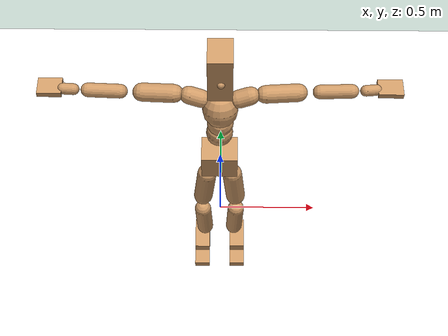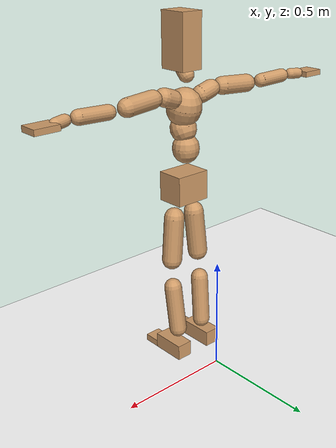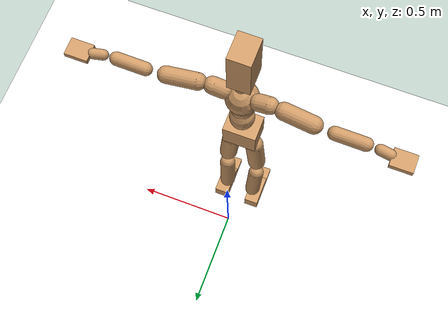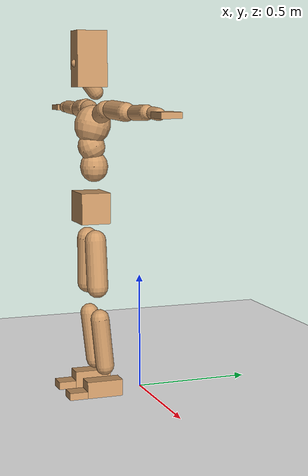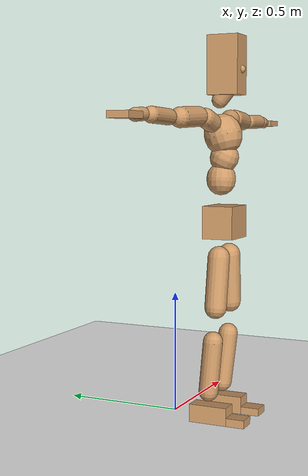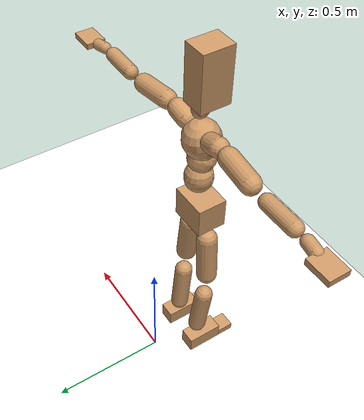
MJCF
<mujoco model="humanoid">
  <option integrator="implicitfast" />

  <visual>
    <global offwidth="1280" offheight="960" />
    <headlight active="1" ambient="0.34 0.34 0.34" diffuse="0.5 0.5 0.5" />
  </visual>

  <default>
    <joint damping="2" stiffness="2" armature="0.01" limited="true" solimplimit="0 .99 .01" />
    <geom condim="1" friction="0.7 0.005 0.0001" solimp=".99 .99 .003" solref="0.015 1" margin="0.001" rgba="0.8 0.6 .4 1" />
    <default class="smplcontact">
      <geom condim="3" friction="1. 0.005 0.0001" solref="0.015 1" solimp="0.98 0.98 0.001" priority="1" />
    </default>
    <default class="stiff_medium">
      <joint stiffness="10" />
    </default>
    <default class="stiff_medium_higher">
      <joint stiffness="50" />
    </default>
    <default class="stiff_high">
      <joint stiffness="100" />
    </default>
  </default>

  <asset>
    <texture type="skybox" builtin="gradient" rgb1="0.99 0.99 0.99" rgb2="0.608 0.828 0.892" width="100" />
    <texture builtin="flat" height="1278" mark="cross" markrgb="1 1 1" name="texgeom" random="0.01" rgb1="0.8 0.6 0.4" rgb2="0.8 0.6 0.4" type="cube" width="127" />
    <texture name="texplane" type="2d" builtin="checker" markrgb="1 1 1" rgb1="0.756 0.772 0.76" rgb2="0.6 0.6 0.6" width="100" height="100" />
    <material name="MatPlane" reflectance="0.5" texture="texplane" texrepeat="1 1" texuniform="true" />
    <material name="geom" texture="texgeom" texuniform="true" />
  </asset>

  <worldbody>
    <light name="tracking_light" pos="0 0 7" dir="0 0 -1" directional="true" cutoff="100" exponent="1" diffuse="1 1 1" specular="0.1 0.1 0.1" mode="trackcom" />
    <camera name="back" pos="0 3 2.4" xyaxes="-1 0 0 0 -1 2" mode="trackcom" />
    <camera name="side" pos="-3 0 2.4" xyaxes="0 -1 0 1 0 2" mode="trackcom" />
    <camera name="front_side" pos="-2.8 -2.8 0.8" xyaxes="0.5 -0.5 0 0.1 0.1 1" mode="trackcom" />
    <geom condim="3" name="floor" pos="0 0 0" rgba="1 1 1 1" size="100 100 .2" type="plane" material="MatPlane" />
    <body name="Pelvis" pos="-0.0018 -0.2233 0.819743" euler="90 0 0">
      <site name="Pelvis" size="0.01" />
      <freejoint name="Pelvis" />
      <geom type="box" pos="0 -0.011028 -0.00418605" size="0.0813616 0.0658032 0.0631713" quat="1.0000 0.0000 0.0000 0.0000" density="3165.830099" name="Pelvis" />
      <body name="L_Hip" pos="0.0528965 -0.0833021 -0.00517548">
        <joint name="L_Hip_x" type="hinge" pos="0 0 0" axis="1 0 0" stiffness="10" range="-160.0 22.92" class="stiff_medium" damping="15" />
        <joint name="L_Hip_y" type="hinge" pos="0 0 0" axis="0 1 0" stiffness="10" range="-70.0 70.0" class="stiff_medium" damping="10" />
        <joint name="L_Hip_z" type="hinge" pos="0 0 0" axis="0 0 1" stiffness="10" range="-28.65 90.0" class="stiff_medium" damping="10" />
        <geom type="capsule" density="2040.816327" fromto="0.00606464 -0.0660348 -0.000792302 0.0241139 -0.264312 -0.00316952" size="0.0452209" name="L_Hip" />
        <body name="L_Knee" pos="0.0301785 -0.330347 -0.00396182">
          <joint name="L_Knee_x" type="hinge" pos="0 0 0" axis="1 0 0" range="-5.16 171.89" damping="8" />
          <joint name="L_Knee_y" type="hinge" pos="0 0 0" axis="0 1 0" range="-4.58 6.88" damping="8" />
          <joint name="L_Knee_z" type="hinge" pos="0 0 0" axis="0 0 1" range="-6.88 4.58" damping="8" />
          <geom type="capsule" density="1234.567901" fromto="-0.00238201 -0.0700827 -0.00766947 -0.00960171 -0.280334 -0.0308253" size="0.0397797" name="L_Knee" />
          <body name="L_Ankle" pos="-0.0119837 -0.350417 -0.0384948">
            <joint name="L_Ankle_x" type="hinge" pos="0 0 0" axis="1 0 0" range="-45.84 45.84" class="stiff_medium" damping="6" />
            <joint name="L_Ankle_y" type="hinge" pos="0 0 0" axis="0 1 0" range="-74.48 22.92" class="stiff_medium" damping="3" />
            <joint name="L_Ankle_z" type="hinge" pos="0 0 0" axis="0 0 1" range="-4.58 4.58" class="stiff_medium" damping="6" />
            <geom type="box" pos="0.0177336 -0.0181903 0.0221643" size="0.0367611 0.035315 0.0778499" quat="1.0000 0.0000 0.0000 0.0000" density="449.071558" name="L_Ankle" class="smplcontact" />
            <body name="L_Toe" pos="0.020093 -0.0424694 0.109265">
              <joint name="L_Toe_x" type="hinge" pos="0 0 0" axis="1 0 0" range="-91.67 22.92" />
              <joint name="L_Toe_y" type="hinge" pos="0 0 0" axis="0 1 0" range="-4.58 4.58" />
              <joint name="L_Toe_z" type="hinge" pos="0 0 0" axis="0 0 1" range="-4.58 4.58" />
              <geom type="box" pos="-0.0022833 0.00418605 0.0227138" size="0.0363806 0.015222 0.0454277" quat="1.0000 0.0000 0.0000 0.0000" density="423.206892" name="L_Toe" class="smplcontact" />
            </body>
          </body>
        </body>
      </body>
      <body name="R_Hip" pos="-0.0515265 -0.0824818 -0.00327273">
        <joint name="R_Hip_x" type="hinge" pos="0 0 0" axis="1 0 0" stiffness="10" range="-160.0 22.92" class="stiff_medium" damping="15" />
        <joint name="R_Hip_y" type="hinge" pos="0 0 0" axis="0 1 0" stiffness="10" range="-70.0 70.0" class="stiff_medium" damping="10" />
        <joint name="R_Hip_z" type="hinge" pos="0 0 0" axis="0 0 1" stiffness="10" range="-90.0 28.65" class="stiff_medium" damping="10" />
        <geom type="capsule" density="2040.816327" fromto="-0.00676943 -0.0673556 -0.00157989 -0.0269318 -0.269507 -0.00624628" size="0.0445592" name="R_Hip" />
        <body name="R_Knee" pos="-0.0337012 -0.336863 -0.00782617">
          <joint name="R_Knee_x" type="hinge" pos="0 0 0" axis="1 0 0" range="-5.16 171.89" damping="8" />
          <joint name="R_Knee_y" type="hinge" pos="0 0 0" axis="0 1 0" range="-6.88 4.58" damping="8" />
          <joint name="R_Knee_z" type="hinge" pos="0 0 0" axis="0 0 1" range="-4.58 6.88" damping="8" />
          <geom type="capsule" density="1234.567901" fromto="0.00280801 -0.0701733 -0.00747481 0.0110843 -0.280601 -0.0297502" size="0.0397797" name="R_Knee" />
          <body name="R_Ankle" pos="0.0138923 -0.350774 -0.037225">
            <joint name="R_Ankle_x" type="hinge" pos="0 0 0" axis="1 0 0" range="-45.84 45.84" class="stiff_medium" damping="6" />
            <joint name="R_Ankle_y" type="hinge" pos="0 0 0" axis="0 1 0" range="-22.92 74.48" class="stiff_medium" damping="3" />
            <joint name="R_Ankle_z" type="hinge" pos="0 0 0" axis="0 0 1" range="-4.58 4.58" class="stiff_medium" damping="6" />
            <geom type="box" pos="-0.0161353 -0.0132431 0.0234466" size="0.0367611 0.0363806 0.0792237" quat="1.0000 0.0000 0.0000 0.0000" density="434.700981" name="R_Ankle" class="smplcontact" />
            <body name="R_Toe" pos="-0.0193319 -0.0366089 0.112928">
              <joint name="R_Toe_x" type="hinge" pos="0 0 0" axis="1 0 0" range="-91.67 22.92" />
              <joint name="R_Toe_y" type="hinge" pos="0 0 0" axis="0 1 0" range="-4.58 4.58" />
              <joint name="R_Toe_z" type="hinge" pos="0 0 0" axis="0 0 1" range="-4.58 4.58" />
              <geom type="box" pos="0.00319662 0.00342495 0.0207905" size="0.0364567 0.0164398 0.0451529" quat="1.0000 0.0000 0.0000 0.0000" density="407.384095" name="R_Toe" class="smplcontact" />
            </body>
          </body>
        </body>
      </body>
      <body name="Torso" pos="-0.00190275 0.0993428 -0.0203214">
        <joint name="Torso_x" type="hinge" pos="0 0 0" axis="1 0 0" range="-25.78 57.3" class="stiff_medium" damping="15" />
        <joint name="Torso_y" type="hinge" pos="0 0 0" axis="0 1 0" range="-57.3 57.3" class="stiff_high" damping="20" />
        <joint name="Torso_z" type="hinge" pos="0 0 0" axis="0 0 1" range="-34.38 34.38" class="stiff_high" damping="20" />
        <geom type="capsule" density="2040.816327" fromto="0.0022468 0.0555508 0.00044936 0.00270362 0.067885 0.000540724" size="0.0586824" name="Torso" />
        <body name="Spine" pos="0.00495098 0.123527 0.000990195">
          <joint name="Spine_x" type="hinge" pos="0 0 0" axis="1 0 0" stiffness="10" range="-25.78 57.3" class="stiff_medium" damping="15" />
          <joint name="Spine_y" type="hinge" pos="0 0 0" axis="0 1 0" stiffness="10" range="-57.3 57.3" class="stiff_high" damping="8" />
          <joint name="Spine_z" type="hinge" pos="0 0 0" axis="0 0 1" stiffness="20" range="-34.38 34.38" class="stiff_high" damping="12" />
          <geom type="capsule" density="2040.816327" fromto="0.000601473 0.0217288 0.0104492 0.000692837 0.0265711 0.0128247" size="0.057614" name="Spine" />
          <body name="Chest" pos="0.00129431 0.0483 0.0232739">
            <joint name="Chest_x" type="hinge" pos="0 0 0" axis="1 0 0" stiffness="10" range="-25.78 57.3" class="stiff_medium" damping="15" />
            <joint name="Chest_y" type="hinge" pos="0 0 0" axis="0 1 0" stiffness="10" range="-57.3 57.3" class="stiff_high" damping="8" />
            <joint name="Chest_z" type="hinge" pos="0 0 0" axis="0 0 1" stiffness="20" range="-34.38 34.38" class="stiff_high" damping="12" />
            <geom type="capsule" density="2040.816327" fromto="-0.00075471 0.0622993 -0.0158505 -0.000846074 0.0760953 -0.0194137" size="0.0764626" name="Chest" />
            <body name="Neck" pos="-0.00234696 0.194979 -0.0409379">
              <joint name="Neck_x" type="hinge" pos="0 0 0" axis="1 0 0" range="-28.65 57.3" class="stiff_medium_higher" damping="10" />
              <joint name="Neck_y" type="hinge" pos="0 0 0" axis="0 1 0" range="-40.11 40.11" class="stiff_medium_higher" damping="10" />
              <joint name="Neck_z" type="hinge" pos="0 0 0" axis="0 0 1" range="-40.11 40.11" class="stiff_medium_higher" damping="10" />
              <geom type="capsule" density="1000" fromto="0.000921088 0.0119086 0.00943027 0.00376032 0.047628 0.0376394" size="0.0333496" name="Neck" />
              <body name="Head" pos="0.00475737 0.0595301 0.046988">
                <joint name="Head_x" type="hinge" pos="0 0 0" axis="1 0 0" range="-28.65 57.3" class="stiff_medium_higher" damping="2" />
                <joint name="Head_y" type="hinge" pos="0 0 0" axis="0 1 0" range="-40.11 40.11" class="stiff_medium_higher" damping="2" />
                <joint name="Head_z" type="hinge" pos="0 0 0" axis="0 0 1" range="-40.11 40.11" class="stiff_medium_higher" damping="2" />
                <geom type="box" pos="-0.00358092 0.0894351 -0.00989016" size="0.0516676 0.117817 0.0647976" quat="1.0000 0.0000 0.0000 0.0000" density="1018.069894" name="Head" />
                <geom type="capsule" name="nose" size="0.017052 0.008526" pos="0 0.0714664 0.04263" quat="1 0 0 0" mass="0" contype="0" conaffinity="0" />
              </body>
            </body>
            <body name="L_Thorax" pos="0.0600108 0.111213 -0.0307595">
              <joint name="L_Thorax_x" type="hinge" pos="0 0 0" axis="1 0 0" range="-10.89 4.58" class="stiff_medium_higher" damping="20" />
              <joint name="L_Thorax_y" type="hinge" pos="0 0 0" axis="0 1 0" range="-28.65 17.19" class="stiff_medium_higher" damping="20" />
              <joint name="L_Thorax_z" type="hinge" pos="0 0 0" axis="0 0 1" range="-31.51 40.11" class="stiff_medium_higher" damping="20" />
              <geom type="capsule" density="1000" fromto="0.0165453 0.00554541 -0.00163135 0.06618 0.0221812 -0.00644937" size="0.0395543" name="L_Thorax" />
              <body name="L_Shoulder" pos="0.0827253 0.0277266 -0.00808073">
                <joint name="L_Shoulder_x" type="hinge" pos="0 0 0" axis="1 0 0" range="-97.4 97.4" class="stiff_medium" damping="6" />
                <joint name="L_Shoulder_y" type="hinge" pos="0 0 0" axis="0 1 0" range="-108.86 80.21" class="stiff_medium" damping="6" />
                <joint name="L_Shoulder_z" type="hinge" pos="0 0 0" axis="0 0 1" range="-97.4 85.94" class="stiff_medium" damping="6" />
                <geom type="capsule" density="1000" fromto="0.046404 -0.0023146 -0.00491705 0.185704 -0.00910972 -0.0196696" size="0.0386044" name="L_Shoulder" />
                <body name="L_Elbow" pos="0.232108 -0.0114243 -0.0245867">
                  <joint name="L_Elbow_x" type="hinge" pos="0 0 0" axis="1 0 0" range="-17.19 4.58" damping="5" />
                  <joint name="L_Elbow_y" type="hinge" pos="0 0 0" axis="0 1 0" range="-180.0 17.19" damping="5" />
                  <joint name="L_Elbow_z" type="hinge" pos="0 0 0" axis="0 0 1" range="-100.84 4.58" damping="5" />
                  <geom type="capsule" density="1000" fromto="0.0445259 0.00160901 -0.000183686 0.178282 0.00643712 -0.000809551" size="0.0302414" name="L_Elbow" />
                  <body name="L_Wrist" pos="0.222808 0.00804614 -0.00106791">
                    <joint name="L_Wrist_x" type="hinge" pos="0 0 0" axis="1 0 0" range="-180.0 22.92" />
                    <joint name="L_Wrist_y" type="hinge" pos="0 0 0" axis="0 1 0" range="-17.19 17.19" />
                    <joint name="L_Wrist_z" type="hinge" pos="0 0 0" axis="0 0 1" range="-22.92 22.92" />
                    <geom type="capsule" density="1000" fromto="0.0150203 -0.00143542 -0.0026822 0.0600826 -0.00581648 -0.010729" size="0.0237451" name="L_Wrist" class="smplcontact" />
                    <body name="L_Hand" pos="0.0751018 -0.00732645 -0.0133364">
                      <joint name="L_Hand_x" type="hinge" pos="0 0 0" axis="1 0 0" range="-17.19 17.19" />
                      <joint name="L_Hand_y" type="hinge" pos="0 0 0" axis="0 1 0" range="-51.57 51.57" />
                      <joint name="L_Hand_z" type="hinge" pos="0 0 0" axis="0 0 1" range="-91.67 91.67" />
                      <geom type="box" pos="0.0449321 0.0007611 -0.00441438" size="0.053317 0.0120254 0.0409472" quat="1.0000 0.0000 0.0000 0.0000" density="400.552564" name="L_Hand" class="smplcontact" />
                    </body>
                  </body>
                </body>
              </body>
            </body>
            <body name="R_Thorax" pos="-0.0625424 0.108905 -0.0341689">
              <joint name="R_Thorax_x" type="hinge" pos="0 0 0" axis="1 0 0" range="-10.89 4.58" class="stiff_medium_higher" damping="20" />
              <joint name="R_Thorax_y" type="hinge" pos="0 0 0" axis="0 1 0" range="-17.19 28.65" class="stiff_medium_higher" damping="20" />
              <joint name="R_Thorax_z" type="hinge" pos="0 0 0" axis="0 0 1" range="-40.11 31.51" class="stiff_medium_higher" damping="20" />
              <geom type="capsule" density="1000" fromto="-0.0174535 0.00590874 -0.00164126 -0.0698154 0.0236354 -0.00664109" size="0.0387951" name="R_Thorax" />
              <body name="R_Shoulder" pos="-0.0872734 0.0296216 -0.00828278">
                <joint name="R_Shoulder_x" type="hinge" pos="0 0 0" axis="1 0 0" range="-97.4 97.4" class="stiff_medium" damping="6" />
                <joint name="R_Shoulder_y" type="hinge" pos="0 0 0" axis="0 1 0" range="-80.21 108.86" class="stiff_medium" damping="6" />
                <joint name="R_Shoulder_z" type="hinge" pos="0 0 0" axis="0 0 1" range="-85.94 97.4" class="stiff_medium" damping="6" />
                <geom type="capsule" density="1000" fromto="-0.0453313 -0.00240866 -0.00383893 -0.181502 -0.00956141 -0.0152833" size="0.0396498" name="R_Shoulder" />
                <body name="R_Elbow" pos="-0.226832 -0.0118954 -0.0191222">
                  <joint name="R_Elbow_x" type="hinge" pos="0 0 0" axis="1 0 0" range="-17.19 4.58" damping="5" />
                  <joint name="R_Elbow_y" type="hinge" pos="0 0 0" axis="0 1 0" range="-17.19 180.0" damping="5" />
                  <joint name="R_Elbow_z" type="hinge" pos="0 0 0" axis="0 0 1" range="-4.58 100.84" damping="5" />
                  <geom type="capsule" density="1000" fromto="-0.0456885 0.00142103 -0.000983721 -0.182574 0.00553386 -0.00393423" size="0.0304654" name="R_Elbow" />
                  <body name="R_Wrist" pos="-0.228263 0.0069549 -0.00499263">
                    <joint name="R_Wrist_x" type="hinge" pos="0 0 0" axis="1 0 0" range="-180.0 22.92" />
                    <joint name="R_Wrist_y" type="hinge" pos="0 0 0" axis="0 1 0" range="-17.19 17.19" />
                    <joint name="R_Wrist_z" type="hinge" pos="0 0 0" axis="0 0 1" range="-22.92 22.92" />
                    <geom type="capsule" density="1000" fromto="-0.0151105 -0.00107749 -0.00187212 -0.0605305 -0.00438564 -0.00741551" size="0.0243424" name="R_Wrist" class="smplcontact" />
                    <body name="R_Hand" pos="-0.0756392 -0.005463 -0.00921275">
                      <joint name="R_Hand_x" type="hinge" pos="0 0 0" axis="1 0 0" range="-17.19 17.19" />
                      <joint name="R_Hand_y" type="hinge" pos="0 0 0" axis="0 1 0" range="-51.57 51.57" />
                      <joint name="R_Hand_z" type="hinge" pos="0 0 0" axis="0 0 1" range="-91.67 91.67" />
                      <geom type="box" pos="-0.0421067 -0.00068499 -0.00601269" size="0.0518587 0.012482 0.0415561" quat="1.0000 0.0000 0.0000 0.0000" density="403.679611" name="R_Hand" class="smplcontact" />
                    </body>
                  </body>
                </body>
              </body>
            </body>
          </body>
        </body>
      </body>
    </body>
  </worldbody>
  <actuator>
    <general name="L_Hip_x" joint="L_Hip_x" biastype="affine" gainprm="287.33006409732246" biasprm="-215.3247604770444 -180 -2.0" ctrllimited="true" ctrlrange="-1 1" forcerange="-360 360" />
    <general name="L_Hip_y" joint="L_Hip_y" biastype="affine" gainprm="219.9114857512855" biasprm="0.0 -180 -2.0" ctrllimited="true" ctrlrange="-1 1" forcerange="-360 360" />
    <general name="L_Hip_z" joint="L_Hip_z" biastype="affine" gainprm="186.3749841742145" biasprm="96.3683546488669 -180 -2.0" ctrllimited="true" ctrlrange="-1 1" forcerange="-360 360" />
    <general name="L_Knee_x" joint="L_Knee_x" biastype="affine" gainprm="278.10948965903646" biasprm="261.8988715665131 -180 -2.0" ctrllimited="true" ctrlrange="-1 1" forcerange="-360 360" />
    <general name="L_Knee_y" joint="L_Knee_y" biastype="affine" gainprm="18.001325905069514" biasprm="3.612831551628262 -180 -2.0" ctrllimited="true" ctrlrange="-1 1" forcerange="-360 360" />
    <general name="L_Knee_z" joint="L_Knee_z" biastype="affine" gainprm="18.001325905069514" biasprm="-3.612831551628262 -180 -2.0" ctrllimited="true" ctrlrange="-1 1" forcerange="-360 360" />
    <general name="L_Ankle_x" joint="L_Ankle_x" biastype="affine" gainprm="72.00530362027807" biasprm="0.0 -90 -2.0" ctrllimited="true" ctrlrange="-1 1" forcerange="-180 180" />
    <general name="L_Ankle_y" joint="L_Ankle_y" biastype="affine" gainprm="76.49778111491148" biasprm="-40.49512930477244 -90 -2.0" ctrllimited="true" ctrlrange="-1 1" forcerange="-180 180" />
    <general name="L_Ankle_z" joint="L_Ankle_z" biastype="affine" gainprm="7.1942471767206255" biasprm="0.0 -90 -2.0" ctrllimited="true" ctrlrange="-1 1" forcerange="-180 180" />
    <general name="L_Toe_x" joint="L_Toe_x" biastype="affine" gainprm="71.99902043497087" biasprm="-43.19689898685965 -72 -0.8" ctrllimited="true" ctrlrange="-1 1" forcerange="-144 144" />
    <general name="L_Toe_y" joint="L_Toe_y" biastype="affine" gainprm="5.755397741376501" biasprm="0.0 -72 -0.8" ctrllimited="true" ctrlrange="-1 1" forcerange="-144 144" />
    <general name="L_Toe_z" joint="L_Toe_z" biastype="affine" gainprm="5.755397741376501" biasprm="0.0 -72 -0.8" ctrllimited="true" ctrlrange="-1 1" forcerange="-144 144" />
    <general name="R_Hip_x" joint="R_Hip_x" biastype="affine" gainprm="287.33006409732246" biasprm="-215.3247604770444 -180 -2.0" ctrllimited="true" ctrlrange="-1 1" forcerange="-360 360" />
    <general name="R_Hip_y" joint="R_Hip_y" biastype="affine" gainprm="219.9114857512855" biasprm="0.0 -180 -2.0" ctrllimited="true" ctrlrange="-1 1" forcerange="-360 360" />
    <general name="R_Hip_z" joint="R_Hip_z" biastype="affine" gainprm="186.3749841742145" biasprm="-96.3683546488669 -180 -2.0" ctrllimited="true" ctrlrange="-1 1" forcerange="-360 360" />
    <general name="R_Knee_x" joint="R_Knee_x" biastype="affine" gainprm="278.10948965903646" biasprm="261.8988715665131 -180 -2.0" ctrllimited="true" ctrlrange="-1 1" forcerange="-360 360" />
    <general name="R_Knee_y" joint="R_Knee_y" biastype="affine" gainprm="18.001325905069514" biasprm="-3.612831551628262 -180 -2.0" ctrllimited="true" ctrlrange="-1 1" forcerange="-360 360" />
    <general name="R_Knee_z" joint="R_Knee_z" biastype="affine" gainprm="18.001325905069514" biasprm="3.612831551628262 -180 -2.0" ctrllimited="true" ctrlrange="-1 1" forcerange="-360 360" />
    <general name="R_Ankle_x" joint="R_Ankle_x" biastype="affine" gainprm="72.00530362027807" biasprm="0.0 -90 -2.0" ctrllimited="true" ctrlrange="-1 1" forcerange="-180 180" />
    <general name="R_Ankle_y" joint="R_Ankle_y" biastype="affine" gainprm="76.49778111491148" biasprm="40.49512930477244 -90 -2.0" ctrllimited="true" ctrlrange="-1 1" forcerange="-180 180" />
    <general name="R_Ankle_z" joint="R_Ankle_z" biastype="affine" gainprm="7.1942471767206255" biasprm="0.0 -90 -2.0" ctrllimited="true" ctrlrange="-1 1" forcerange="-180 180" />
    <general name="R_Toe_x" joint="R_Toe_x" biastype="affine" gainprm="71.99902043497087" biasprm="-43.19689898685965 -72 -0.8" ctrllimited="true" ctrlrange="-1 1" forcerange="-144 144" />
    <general name="R_Toe_y" joint="R_Toe_y" biastype="affine" gainprm="5.755397741376501" biasprm="0.0 -72 -0.8" ctrllimited="true" ctrlrange="-1 1" forcerange="-144 144" />
    <general name="R_Toe_z" joint="R_Toe_z" biastype="affine" gainprm="5.755397741376501" biasprm="0.0 -72 -0.8" ctrllimited="true" ctrlrange="-1 1" forcerange="-144 144" />
    <general name="Torso_x" joint="Torso_x" biastype="affine" gainprm="174.00234510682668" biasprm="66.0153336274335 -240 -4.0" ctrllimited="true" ctrlrange="-1 1" forcerange="-360 360" />
    <general name="Torso_y" joint="Torso_y" biastype="affine" gainprm="240.0176787342602" biasprm="0.0 -240 -4.0" ctrllimited="true" ctrlrange="-1 1" forcerange="-360 360" />
    <general name="Torso_z" joint="Torso_z" biastype="affine" gainprm="144.01060724055614" biasprm="0.0 -240 -4.0" ctrllimited="true" ctrlrange="-1 1" forcerange="-360 360" />
    <general name="Spine_x" joint="Spine_x" biastype="affine" gainprm="174.00234510682668" biasprm="66.0153336274335 -240 -4.0" ctrllimited="true" ctrlrange="-1 1" forcerange="-360 360" />
    <general name="Spine_y" joint="Spine_y" biastype="affine" gainprm="240.0176787342602" biasprm="0.0 -240 -4.0" ctrllimited="true" ctrlrange="-1 1" forcerange="-360 360" />
    <general name="Spine_z" joint="Spine_z" biastype="affine" gainprm="144.01060724055614" biasprm="0.0 -240 -4.0" ctrllimited="true" ctrlrange="-1 1" forcerange="-360 360" />
    <general name="Chest_x" joint="Chest_x" biastype="affine" gainprm="174.00234510682668" biasprm="66.0153336274335 -240 -4.0" ctrllimited="true" ctrlrange="-1 1" forcerange="-360 360" />
    <general name="Chest_y" joint="Chest_y" biastype="affine" gainprm="240.0176787342602" biasprm="0.0 -240 -4.0" ctrllimited="true" ctrlrange="-1 1" forcerange="-360 360" />
    <general name="Chest_z" joint="Chest_z" biastype="affine" gainprm="144.01060724055614" biasprm="0.0 -240 -4.0" ctrllimited="true" ctrlrange="-1 1" forcerange="-360 360" />
    <general name="Neck_x" joint="Neck_x" biastype="affine" gainprm="27.00198885760427" biasprm="9.000662952534757 -36 -0.8" ctrllimited="true" ctrlrange="-1 1" forcerange="-72 72" />
    <general name="Neck_y" joint="Neck_y" biastype="affine" gainprm="25.20185626709732" biasprm="0.0 -36 -0.8" ctrllimited="true" ctrlrange="-1 1" forcerange="-72 72" />
    <general name="Neck_z" joint="Neck_z" biastype="affine" gainprm="25.20185626709732" biasprm="0.0 -36 -0.8" ctrllimited="true" ctrlrange="-1 1" forcerange="-72 72" />
    <general name="Head_x" joint="Head_x" biastype="affine" gainprm="18.001325905069514" biasprm="6.000441968356505 -24 -0.8" ctrllimited="true" ctrlrange="-1 1" forcerange="-48 48" />
    <general name="Head_y" joint="Head_y" biastype="affine" gainprm="16.801237511398213" biasprm="0.0 -24 -0.8" ctrllimited="true" ctrlrange="-1 1" forcerange="-48 48" />
    <general name="Head_z" joint="Head_z" biastype="affine" gainprm="16.801237511398213" biasprm="0.0 -24 -0.8" ctrllimited="true" ctrlrange="-1 1" forcerange="-48 48" />
    <general name="L_Thorax_x" joint="L_Thorax_x" biastype="affine" gainprm="16.200146117011364" biasprm="-6.6078165480505335 -120 -1.6" ctrllimited="true" ctrlrange="-1 1" forcerange="-240 240" />
    <general name="L_Thorax_y" joint="L_Thorax_y" biastype="affine" gainprm="48.00353574685204" biasprm="-12.00088393671301 -120 -1.6" ctrllimited="true" ctrlrange="-1 1" forcerange="-240 240" />
    <general name="L_Thorax_z" joint="L_Thorax_z" biastype="affine" gainprm="75.00028861670033" biasprm="9.00589894029074 -120 -1.6" ctrllimited="true" ctrlrange="-1 1" forcerange="-240 240" />
    <general name="L_Shoulder_x" joint="L_Shoulder_x" biastype="affine" gainprm="81.5976331892389" biasprm="0.0 -48 -1.6" ctrllimited="true" ctrlrange="-1 1" forcerange="-96 96" />
    <general name="L_Shoulder_y" joint="L_Shoulder_y" biastype="affine" gainprm="79.19745640189629" biasprm="-12.00088393671301 -48 -1.6" ctrllimited="true" ctrlrange="-1 1" forcerange="-96 96" />
    <general name="L_Shoulder_z" joint="L_Shoulder_z" biastype="affine" gainprm="76.79727961455369" biasprm="-4.800353574685214 -48 -1.6" ctrllimited="true" ctrlrange="-1 1" forcerange="-96 96" />
    <general name="L_Elbow_x" joint="L_Elbow_x" biastype="affine" gainprm="13.67849441372996" biasprm="-7.923096672353461 -72 -0.8" ctrllimited="true" ctrlrange="-1 1" forcerange="-144 144" />
    <general name="L_Elbow_y" joint="L_Elbow_y" biastype="affine" gainprm="123.89813107227425" biasprm="-102.29653998619085 -72 -0.8" ctrllimited="true" ctrlrange="-1 1" forcerange="-144 144" />
    <general name="L_Elbow_z" joint="L_Elbow_z" biastype="affine" gainprm="66.23733950828719" biasprm="-60.4819417669107 -72 -0.8" ctrllimited="true" ctrlrange="-1 1" forcerange="-144 144" />
    <general name="L_Wrist_x" joint="L_Wrist_x" biastype="affine" gainprm="21.24973270888136" biasprm="-16.449379134196157 -12 -0.8" ctrllimited="true" ctrlrange="-1 1" forcerange="-24 24" />
    <general name="L_Wrist_y" joint="L_Wrist_y" biastype="affine" gainprm="3.6002651810139037" biasprm="0.0 -12 -0.8" ctrllimited="true" ctrlrange="-1 1" forcerange="-24 24" />
    <general name="L_Wrist_z" joint="L_Wrist_z" biastype="affine" gainprm="4.800353574685205" biasprm="0.0 -12 -0.8" ctrllimited="true" ctrlrange="-1 1" forcerange="-24 24" />
    <general name="L_Hand_x" joint="L_Hand_x" biastype="affine" gainprm="3.6002651810139037" biasprm="0.0 -12 -0.8" ctrllimited="true" ctrlrange="-1 1" forcerange="-24 24" />
    <general name="L_Hand_y" joint="L_Hand_y" biastype="affine" gainprm="10.800795543041708" biasprm="0.0 -12 -0.8" ctrllimited="true" ctrlrange="-1 1" forcerange="-24 24" />
    <general name="L_Hand_z" joint="L_Hand_z" biastype="affine" gainprm="19.199319903638422" biasprm="0.0 -12 -0.8" ctrllimited="true" ctrlrange="-1 1" forcerange="-24 24" />
    <general name="R_Thorax_x" joint="R_Thorax_x" biastype="affine" gainprm="16.200146117011364" biasprm="-6.6078165480505335 -120 -1.6" ctrllimited="true" ctrlrange="-1 1" forcerange="-240 240" />
    <general name="R_Thorax_y" joint="R_Thorax_y" biastype="affine" gainprm="48.00353574685204" biasprm="12.000883936713002 -120 -1.6" ctrllimited="true" ctrlrange="-1 1" forcerange="-240 240" />
    <general name="R_Thorax_z" joint="R_Thorax_z" biastype="affine" gainprm="75.00028861670033" biasprm="-9.00589894029074 -120 -1.6" ctrllimited="true" ctrlrange="-1 1" forcerange="-240 240" />
    <general name="R_Shoulder_x" joint="R_Shoulder_x" biastype="affine" gainprm="81.5976331892389" biasprm="0.0 -48 -1.6" ctrllimited="true" ctrlrange="-1 1" forcerange="-96 96" />
    <general name="R_Shoulder_y" joint="R_Shoulder_y" biastype="affine" gainprm="79.19745640189629" biasprm="12.00088393671301 -48 -1.6" ctrllimited="true" ctrlrange="-1 1" forcerange="-96 96" />
    <general name="R_Shoulder_z" joint="R_Shoulder_z" biastype="affine" gainprm="76.79727961455369" biasprm="4.800353574685204 -48 -1.6" ctrllimited="true" ctrlrange="-1 1" forcerange="-96 96" />
    <general name="R_Elbow_x" joint="R_Elbow_x" biastype="affine" gainprm="13.67849441372996" biasprm="-7.923096672353461 -72 -0.8" ctrllimited="true" ctrlrange="-1 1" forcerange="-144 144" />
    <general name="R_Elbow_y" joint="R_Elbow_y" biastype="affine" gainprm="123.89813107227425" biasprm="102.29653998619085 -72 -0.8" ctrllimited="true" ctrlrange="-1 1" forcerange="-144 144" />
    <general name="R_Elbow_z" joint="R_Elbow_z" biastype="affine" gainprm="66.23733950828719" biasprm="60.481941766910694 -72 -0.8" ctrllimited="true" ctrlrange="-1 1" forcerange="-144 144" />
    <general name="R_Wrist_x" joint="R_Wrist_x" biastype="affine" gainprm="21.24973270888136" biasprm="-16.449379134196157 -12 -0.8" ctrllimited="true" ctrlrange="-1 1" forcerange="-24 24" />
    <general name="R_Wrist_y" joint="R_Wrist_y" biastype="affine" gainprm="3.6002651810139037" biasprm="0.0 -12 -0.8" ctrllimited="true" ctrlrange="-1 1" forcerange="-24 24" />
    <general name="R_Wrist_z" joint="R_Wrist_z" biastype="affine" gainprm="4.800353574685205" biasprm="0.0 -12 -0.8" ctrllimited="true" ctrlrange="-1 1" forcerange="-24 24" />
    <general name="R_Hand_x" joint="R_Hand_x" biastype="affine" gainprm="3.6002651810139037" biasprm="0.0 -12 -0.8" ctrllimited="true" ctrlrange="-1 1" forcerange="-24 24" />
    <general name="R_Hand_y" joint="R_Hand_y" biastype="affine" gainprm="10.800795543041708" biasprm="0.0 -12 -0.8" ctrllimited="true" ctrlrange="-1 1" forcerange="-24 24" />
    <general name="R_Hand_z" joint="R_Hand_z" biastype="affine" gainprm="19.199319903638422" biasprm="0.0 -12 -0.8" ctrllimited="true" ctrlrange="-1 1" forcerange="-24 24" />
  </actuator>
  <contact>
    <exclude body1="Torso" body2="Chest" />
    <exclude body1="Head" body2="Chest" />
    <exclude body1="R_Knee" body2="R_Toe" />
    <exclude body1="R_Knee" body2="L_Ankle" />
    <exclude body1="R_Knee" body2="L_Toe" />
    <exclude body1="L_Knee" body2="L_Toe" />
    <exclude body1="L_Knee" body2="R_Ankle" />
    <exclude body1="L_Knee" body2="R_Toe" />
    <exclude body1="L_Shoulder" body2="Chest" />
    <exclude body1="R_Shoulder" body2="Chest" />
  </contact>
  <sensor>
    <framelinvel name="sensor_Pelvis_framelinvel" objtype="xbody" objname="Pelvis" />
    <framelinvel name="sensor_L_Hip_framelinvel" objtype="xbody" objname="L_Hip" />
    <framelinvel name="sensor_L_Knee_framelinvel" objtype="xbody" objname="L_Knee" />
    <framelinvel name="sensor_L_Ankle_framelinvel" objtype="xbody" objname="L_Ankle" />
    <framelinvel name="sensor_L_Toe_framelinvel" objtype="xbody" objname="L_Toe" />
    <framelinvel name="sensor_R_Hip_framelinvel" objtype="xbody" objname="R_Hip" />
    <framelinvel name="sensor_R_Knee_framelinvel" objtype="xbody" objname="R_Knee" />
    <framelinvel name="sensor_R_Ankle_framelinvel" objtype="xbody" objname="R_Ankle" />
    <framelinvel name="sensor_R_Toe_framelinvel" objtype="xbody" objname="R_Toe" />
    <framelinvel name="sensor_Torso_framelinvel" objtype="xbody" objname="Torso" />
    <framelinvel name="sensor_Spine_framelinvel" objtype="xbody" objname="Spine" />
    <framelinvel name="sensor_Chest_framelinvel" objtype="xbody" objname="Chest" />
    <framelinvel name="sensor_Neck_framelinvel" objtype="xbody" objname="Neck" />
    <framelinvel name="sensor_Head_framelinvel" objtype="xbody" objname="Head" />
    <framelinvel name="sensor_L_Thorax_framelinvel" objtype="xbody" objname="L_Thorax" />
    <framelinvel name="sensor_L_Shoulder_framelinvel" objtype="xbody" objname="L_Shoulder" />
    <framelinvel name="sensor_L_Elbow_framelinvel" objtype="xbody" objname="L_Elbow" />
    <framelinvel name="sensor_L_Wrist_framelinvel" objtype="xbody" objname="L_Wrist" />
    <framelinvel name="sensor_L_Hand_framelinvel" objtype="xbody" objname="L_Hand" />
    <framelinvel name="sensor_R_Thorax_framelinvel" objtype="xbody" objname="R_Thorax" />
    <framelinvel name="sensor_R_Shoulder_framelinvel" objtype="xbody" objname="R_Shoulder" />
    <framelinvel name="sensor_R_Elbow_framelinvel" objtype="xbody" objname="R_Elbow" />
    <framelinvel name="sensor_R_Wrist_framelinvel" objtype="xbody" objname="R_Wrist" />
    <framelinvel name="sensor_R_Hand_framelinvel" objtype="xbody" objname="R_Hand" />
    <frameangvel name="sensor_Pelvis_frameangvel" objtype="xbody" objname="Pelvis" />
    <frameangvel name="sensor_L_Hip_frameangvel" objtype="xbody" objname="L_Hip" />
    <frameangvel name="sensor_L_Knee_frameangvel" objtype="xbody" objname="L_Knee" />
    <frameangvel name="sensor_L_Ankle_frameangvel" objtype="xbody" objname="L_Ankle" />
    <frameangvel name="sensor_L_Toe_frameangvel" objtype="xbody" objname="L_Toe" />
    <frameangvel name="sensor_R_Hip_frameangvel" objtype="xbody" objname="R_Hip" />
    <frameangvel name="sensor_R_Knee_frameangvel" objtype="xbody" objname="R_Knee" />
    <frameangvel name="sensor_R_Ankle_frameangvel" objtype="xbody" objname="R_Ankle" />
    <frameangvel name="sensor_R_Toe_frameangvel" objtype="xbody" objname="R_Toe" />
    <frameangvel name="sensor_Torso_frameangvel" objtype="xbody" objname="Torso" />
    <frameangvel name="sensor_Spine_frameangvel" objtype="xbody" objname="Spine" />
    <frameangvel name="sensor_Chest_frameangvel" objtype="xbody" objname="Chest" />
    <frameangvel name="sensor_Neck_frameangvel" objtype="xbody" objname="Neck" />
    <frameangvel name="sensor_Head_frameangvel" objtype="xbody" objname="Head" />
    <frameangvel name="sensor_L_Thorax_frameangvel" objtype="xbody" objname="L_Thorax" />
    <frameangvel name="sensor_L_Shoulder_frameangvel" objtype="xbody" objname="L_Shoulder" />
    <frameangvel name="sensor_L_Elbow_frameangvel" objtype="xbody" objname="L_Elbow" />
    <frameangvel name="sensor_L_Wrist_frameangvel" objtype="xbody" objname="L_Wrist" />
    <frameangvel name="sensor_L_Hand_frameangvel" objtype="xbody" objname="L_Hand" />
    <frameangvel name="sensor_R_Thorax_frameangvel" objtype="xbody" objname="R_Thorax" />
    <frameangvel name="sensor_R_Shoulder_frameangvel" objtype="xbody" objname="R_Shoulder" />
    <frameangvel name="sensor_R_Elbow_frameangvel" objtype="xbody" objname="R_Elbow" />
    <frameangvel name="sensor_R_Wrist_frameangvel" objtype="xbody" objname="R_Wrist" />
    <frameangvel name="sensor_R_Hand_frameangvel" objtype="xbody" objname="R_Hand" />
    <subtreelinvel name="Chest_subtreelinvel" body="Chest" />
    <gyro name="Pelvis_gyro" site="Pelvis" />
  </sensor>
</mujoco>
